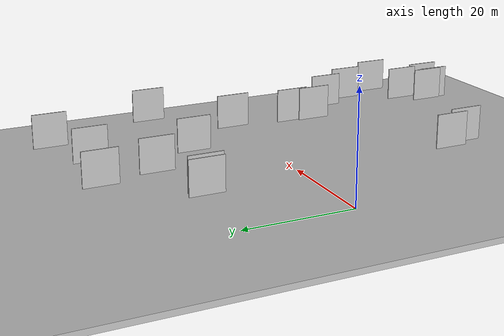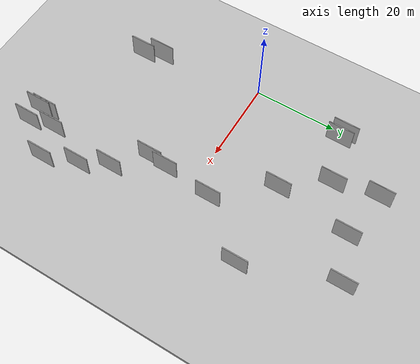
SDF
<?xml version="1.0" encoding="utf-8"?>

<sdf version="1.6">

   <world name="default">

      <gui fullscreen="0">

         <camera name="user_camera">

            <pose>-15 0 4.57585 0 0 0</pose>

            <view_controller>orbit</view_controller>

         </camera>

      </gui>

      <scene>

         <sky>

           <clouds>

             <speed>12</speed>

           </clouds>

         </sky>

         <ambient>0.4 0.4 0.4 1</ambient>

         <background>0.7 0.7 0.7 1</background>

         <shadows>1</shadows>

      </scene>

      <gravity>0 0 -9.8066</gravity>

      <magnetic_field>6e-06 2.3e-05 -4.2e-05</magnetic_field>

      <physics default="0" name="default_physics" type="ode">

         <ode>

            <solver>

               <type>quick</type>

               <iters>10</iters>

               <sor>1.0</sor>

               <use_dynamic_moi_rescaling>0</use_dynamic_moi_rescaling>

            </solver>

            <constraints>

               <cfm>0</cfm>

               <erp>0.2</erp>

               <contact_max_correcting_vel>100</contact_max_correcting_vel>

               <contact_surface_layer>0.001</contact_surface_layer>

            </constraints>

         </ode>

         <max_step_size>0.004</max_step_size>

         <real_time_factor>1</real_time_factor>

         <real_time_update_rate>250</real_time_update_rate>

      </physics>

      <light name="sun" type="directional">

         <cast_shadows>1</cast_shadows>

         <pose>0 0 10 0 0 0</pose>

         <diffuse>0.8 0.8 0.8 1</diffuse>

         <specular>0.2 0.2 0.2 1</specular>

         <attenuation>

            <range>1000</range>

            <constant>0.9</constant>

            <linear>0.01</linear>

            <quadratic>0.001</quadratic>

         </attenuation>

         <direction>-0.5 0.1 -0.9</direction>

      </light>

      <include>

         <name>ground_plane_1</name>

         <uri>model://HANNAS_ground_plane</uri>

         <pose>0 0 0  0 0 0</pose>

      </include>

      <include>

         <name>ground_plane_2</name>

         <uri>model://HANNAS_ground_plane</uri>

         <pose>100 0 0  0 0 0</pose>

      </include>

      <model name="HANNAS_wall_1">

         <static>1</static>

         <pose frame="">33.4672 6.1095 5.0 0.000000 0.000000 1.570796</pose>

         <link name="link">

            <pose frame="">0 0 3.00 0 0 0</pose>

            <collision name="collision">

               <geometry>

                  <box>

                     <size>6.00 0.2 6.00</size>

                  </box>

               </geometry>

               <max_contacts>10</max_contacts>

               <surface>

                  <contact>

                     <ode/>

                  </contact>

                  <bounce/>

                  <friction>

                     <torsional>

                        <ode/>

                     </torsional>

                     <ode/>

                  </friction>

               </surface>

            </collision>

            <visual name="visual">

               <cast_shadows>0</cast_shadows>

               <geometry>

                  <box>

                     <size>6.00 0.2 6.00</size>

                  </box>

               </geometry>

               <material>

                  <script>

                     <uri>model://HANNAS_wall/materials/scripts</uri>

                     <uri>model://HANNAS_wall/materials/textures</uri>

                     <name>vrc/HANNAS_wall</name>

                  </script>

               </material>

            </visual>

            <self_collide>0</self_collide>

            <enable_wind>0</enable_wind>

            <kinematic>0</kinematic>

         </link>

      </model>

      <model name="HANNAS_wall_2">

         <static>1</static>

         <pose frame="">8.4890 -26.8085 5.0 0.000000 0.000000 1.570796</pose>

         <link name="link">

            <pose frame="">0 0 3.00 0 0 0</pose>

            <collision name="collision">

               <geometry>

                  <box>

                     <size>6.00 0.2 6.00</size>

                  </box>

               </geometry>

               <max_contacts>10</max_contacts>

               <surface>

                  <contact>

                     <ode/>

                  </contact>

                  <bounce/>

                  <friction>

                     <torsional>

                        <ode/>

                     </torsional>

                     <ode/>

                  </friction>

               </surface>

            </collision>

            <visual name="visual">

               <cast_shadows>0</cast_shadows>

               <geometry>

                  <box>

                     <size>6.00 0.2 6.00</size>

                  </box>

               </geometry>

               <material>

                  <script>

                     <uri>model://HANNAS_wall/materials/scripts</uri>

                     <uri>model://HANNAS_wall/materials/textures</uri>

                     <name>vrc/HANNAS_wall</name>

                  </script>

               </material>

            </visual>

            <self_collide>0</self_collide>

            <enable_wind>0</enable_wind>

            <kinematic>0</kinematic>

         </link>

      </model>

      <model name="HANNAS_wall_3">

         <static>1</static>

         <pose frame="">34.0434 -37.7757 5.0 0.000000 0.000000 1.570796</pose>

         <link name="link">

            <pose frame="">0 0 3.00 0 0 0</pose>

            <collision name="collision">

               <geometry>

                  <box>

                     <size>6.00 0.2 6.00</size>

                  </box>

               </geometry>

               <max_contacts>10</max_contacts>

               <surface>

                  <contact>

                     <ode/>

                  </contact>

                  <bounce/>

                  <friction>

                     <torsional>

                        <ode/>

                     </torsional>

                     <ode/>

                  </friction>

               </surface>

            </collision>

            <visual name="visual">

               <cast_shadows>0</cast_shadows>

               <geometry>

                  <box>

                     <size>6.00 0.2 6.00</size>

                  </box>

               </geometry>

               <material>

                  <script>

                     <uri>model://HANNAS_wall/materials/scripts</uri>

                     <uri>model://HANNAS_wall/materials/textures</uri>

                     <name>vrc/HANNAS_wall</name>

                  </script>

               </material>

            </visual>

            <self_collide>0</self_collide>

            <enable_wind>0</enable_wind>

            <kinematic>0</kinematic>

         </link>

      </model>

      <model name="HANNAS_wall_4">

         <static>1</static>

         <pose frame="">14.4410 36.9254 5.0 0.000000 0.000000 1.570796</pose>

         <link name="link">

            <pose frame="">0 0 3.00 0 0 0</pose>

            <collision name="collision">

               <geometry>

                  <box>

                     <size>6.00 0.2 6.00</size>

                  </box>

               </geometry>

               <max_contacts>10</max_contacts>

               <surface>

                  <contact>

                     <ode/>

                  </contact>

                  <bounce/>

                  <friction>

                     <torsional>

                        <ode/>

                     </torsional>

                     <ode/>

                  </friction>

               </surface>

            </collision>

            <visual name="visual">

               <cast_shadows>0</cast_shadows>

               <geometry>

                  <box>

                     <size>6.00 0.2 6.00</size>

                  </box>

               </geometry>

               <material>

                  <script>

                     <uri>model://HANNAS_wall/materials/scripts</uri>

                     <uri>model://HANNAS_wall/materials/textures</uri>

                     <name>vrc/HANNAS_wall</name>

                  </script>

               </material>

            </visual>

            <self_collide>0</self_collide>

            <enable_wind>0</enable_wind>

            <kinematic>0</kinematic>

         </link>

      </model>

      <model name="HANNAS_wall_5">

         <static>1</static>

         <pose frame="">4.0566 23.6600 5.0 0.000000 0.000000 1.570796</pose>

         <link name="link">

            <pose frame="">0 0 3.00 0 0 0</pose>

            <collision name="collision">

               <geometry>

                  <box>

                     <size>6.00 0.2 6.00</size>

                  </box>

               </geometry>

               <max_contacts>10</max_contacts>

               <surface>

                  <contact>

                     <ode/>

                  </contact>

                  <bounce/>

                  <friction>

                     <torsional>

                        <ode/>

                     </torsional>

                     <ode/>

                  </friction>

               </surface>

            </collision>

            <visual name="visual">

               <cast_shadows>0</cast_shadows>

               <geometry>

                  <box>

                     <size>6.00 0.2 6.00</size>

                  </box>

               </geometry>

               <material>

                  <script>

                     <uri>model://HANNAS_wall/materials/scripts</uri>

                     <uri>model://HANNAS_wall/materials/textures</uri>

                     <name>vrc/HANNAS_wall</name>

                  </script>

               </material>

            </visual>

            <self_collide>0</self_collide>

            <enable_wind>0</enable_wind>

            <kinematic>0</kinematic>

         </link>

      </model>

      <model name="HANNAS_wall_6">

         <static>1</static>

         <pose frame="">36.7212 -32.2249 5.0 0.000000 0.000000 1.570796</pose>

         <link name="link">

            <pose frame="">0 0 3.00 0 0 0</pose>

            <collision name="collision">

               <geometry>

                  <box>

                     <size>6.00 0.2 6.00</size>

                  </box>

               </geometry>

               <max_contacts>10</max_contacts>

               <surface>

                  <contact>

                     <ode/>

                  </contact>

                  <bounce/>

                  <friction>

                     <torsional>

                        <ode/>

                     </torsional>

                     <ode/>

                  </friction>

               </surface>

            </collision>

            <visual name="visual">

               <cast_shadows>0</cast_shadows>

               <geometry>

                  <box>

                     <size>6.00 0.2 6.00</size>

                  </box>

               </geometry>

               <material>

                  <script>

                     <uri>model://HANNAS_wall/materials/scripts</uri>

                     <uri>model://HANNAS_wall/materials/textures</uri>

                     <name>vrc/HANNAS_wall</name>

                  </script>

               </material>

            </visual>

            <self_collide>0</self_collide>

            <enable_wind>0</enable_wind>

            <kinematic>0</kinematic>

         </link>

      </model>

      <model name="HANNAS_wall_7">

         <static>1</static>

         <pose frame="">33.7180 -36.2812 5.0 0.000000 0.000000 1.570796</pose>

         <link name="link">

            <pose frame="">0 0 3.00 0 0 0</pose>

            <collision name="collision">

               <geometry>

                  <box>

                     <size>6.00 0.2 6.00</size>

                  </box>

               </geometry>

               <max_contacts>10</max_contacts>

               <surface>

                  <contact>

                     <ode/>

                  </contact>

                  <bounce/>

                  <friction>

                     <torsional>

                        <ode/>

                     </torsional>

                     <ode/>

                  </friction>

               </surface>

            </collision>

            <visual name="visual">

               <cast_shadows>0</cast_shadows>

               <geometry>

                  <box>

                     <size>6.00 0.2 6.00</size>

                  </box>

               </geometry>

               <material>

                  <script>

                     <uri>model://HANNAS_wall/materials/scripts</uri>

                     <uri>model://HANNAS_wall/materials/textures</uri>

                     <name>vrc/HANNAS_wall</name>

                  </script>

               </material>

            </visual>

            <self_collide>0</self_collide>

            <enable_wind>0</enable_wind>

            <kinematic>0</kinematic>

         </link>

      </model>

      <model name="HANNAS_wall_8">

         <static>1</static>

         <pose frame="">5.6744 23.1368 5.0 0.000000 0.000000 1.570796</pose>

         <link name="link">

            <pose frame="">0 0 3.00 0 0 0</pose>

            <collision name="collision">

               <geometry>

                  <box>

                     <size>6.00 0.2 6.00</size>

                  </box>

               </geometry>

               <max_contacts>10</max_contacts>

               <surface>

                  <contact>

                     <ode/>

                  </contact>

                  <bounce/>

                  <friction>

                     <torsional>

                        <ode/>

                     </torsional>

                     <ode/>

                  </friction>

               </surface>

            </collision>

            <visual name="visual">

               <cast_shadows>0</cast_shadows>

               <geometry>

                  <box>

                     <size>6.00 0.2 6.00</size>

                  </box>

               </geometry>

               <material>

                  <script>

                     <uri>model://HANNAS_wall/materials/scripts</uri>

                     <uri>model://HANNAS_wall/materials/textures</uri>

                     <name>vrc/HANNAS_wall</name>

                  </script>

               </material>

            </visual>

            <self_collide>0</self_collide>

            <enable_wind>0</enable_wind>

            <kinematic>0</kinematic>

         </link>

      </model>

      <model name="HANNAS_wall_9">

         <static>1</static>

         <pose frame="">36.3481 38.9907 5.0 0.000000 0.000000 1.570796</pose>

         <link name="link">

            <pose frame="">0 0 3.00 0 0 0</pose>

            <collision name="collision">

               <geometry>

                  <box>

                     <size>6.00 0.2 6.00</size>

                  </box>

               </geometry>

               <max_contacts>10</max_contacts>

               <surface>

                  <contact>

                     <ode/>

                  </contact>

                  <bounce/>

                  <friction>

                     <torsional>

                        <ode/>

                     </torsional>

                     <ode/>

                  </friction>

               </surface>

            </collision>

            <visual name="visual">

               <cast_shadows>0</cast_shadows>

               <geometry>

                  <box>

                     <size>6.00 0.2 6.00</size>

                  </box>

               </geometry>

               <material>

                  <script>

                     <uri>model://HANNAS_wall/materials/scripts</uri>

                     <uri>model://HANNAS_wall/materials/textures</uri>

                     <name>vrc/HANNAS_wall</name>

                  </script>

               </material>

            </visual>

            <self_collide>0</self_collide>

            <enable_wind>0</enable_wind>

            <kinematic>0</kinematic>

         </link>

      </model>

      <model name="HANNAS_wall_10">

         <static>1</static>

         <pose frame="">43.6414 18.6308 5.0 0.000000 0.000000 1.570796</pose>

         <link name="link">

            <pose frame="">0 0 3.00 0 0 0</pose>

            <collision name="collision">

               <geometry>

                  <box>

                     <size>6.00 0.2 6.00</size>

                  </box>

               </geometry>

               <max_contacts>10</max_contacts>

               <surface>

                  <contact>

                     <ode/>

                  </contact>

                  <bounce/>

                  <friction>

                     <torsional>

                        <ode/>

                     </torsional>

                     <ode/>

                  </friction>

               </surface>

            </collision>

            <visual name="visual">

               <cast_shadows>0</cast_shadows>

               <geometry>

                  <box>

                     <size>6.00 0.2 6.00</size>

                  </box>

               </geometry>

               <material>

                  <script>

                     <uri>model://HANNAS_wall/materials/scripts</uri>

                     <uri>model://HANNAS_wall/materials/textures</uri>

                     <name>vrc/HANNAS_wall</name>

                  </script>

               </material>

            </visual>

            <self_collide>0</self_collide>

            <enable_wind>0</enable_wind>

            <kinematic>0</kinematic>

         </link>

      </model>

      <model name="HANNAS_wall_11">

         <static>1</static>

         <pose frame="">44.1899 -29.6172 5.0 0.000000 0.000000 1.570796</pose>

         <link name="link">

            <pose frame="">0 0 3.00 0 0 0</pose>

            <collision name="collision">

               <geometry>

                  <box>

                     <size>6.00 0.2 6.00</size>

                  </box>

               </geometry>

               <max_contacts>10</max_contacts>

               <surface>

                  <contact>

                     <ode/>

                  </contact>

                  <bounce/>

                  <friction>

                     <torsional>

                        <ode/>

                     </torsional>

                     <ode/>

                  </friction>

               </surface>

            </collision>

            <visual name="visual">

               <cast_shadows>0</cast_shadows>

               <geometry>

                  <box>

                     <size>6.00 0.2 6.00</size>

                  </box>

               </geometry>

               <material>

                  <script>

                     <uri>model://HANNAS_wall/materials/scripts</uri>

                     <uri>model://HANNAS_wall/materials/textures</uri>

                     <name>vrc/HANNAS_wall</name>

                  </script>

               </material>

            </visual>

            <self_collide>0</self_collide>

            <enable_wind>0</enable_wind>

            <kinematic>0</kinematic>

         </link>

      </model>

      <model name="HANNAS_wall_12">

         <static>1</static>

         <pose frame="">31.7360 -9.5927 5.0 0.000000 0.000000 1.570796</pose>

         <link name="link">

            <pose frame="">0 0 3.00 0 0 0</pose>

            <collision name="collision">

               <geometry>

                  <box>

                     <size>6.00 0.2 6.00</size>

                  </box>

               </geometry>

               <max_contacts>10</max_contacts>

               <surface>

                  <contact>

                     <ode/>

                  </contact>

                  <bounce/>

                  <friction>

                     <torsional>

                        <ode/>

                     </torsional>

                     <ode/>

                  </friction>

               </surface>

            </collision>

            <visual name="visual">

               <cast_shadows>0</cast_shadows>

               <geometry>

                  <box>

                     <size>6.00 0.2 6.00</size>

                  </box>

               </geometry>

               <material>

                  <script>

                     <uri>model://HANNAS_wall/materials/scripts</uri>

                     <uri>model://HANNAS_wall/materials/textures</uri>

                     <name>vrc/HANNAS_wall</name>

                  </script>

               </material>

            </visual>

            <self_collide>0</self_collide>

            <enable_wind>0</enable_wind>

            <kinematic>0</kinematic>

         </link>

      </model>

      <model name="HANNAS_wall_13">

         <static>1</static>

         <pose frame="">26.1785 34.9838 5.0 0.000000 0.000000 1.570796</pose>

         <link name="link">

            <pose frame="">0 0 3.00 0 0 0</pose>

            <collision name="collision">

               <geometry>

                  <box>

                     <size>6.00 0.2 6.00</size>

                  </box>

               </geometry>

               <max_contacts>10</max_contacts>

               <surface>

                  <contact>

                     <ode/>

                  </contact>

                  <bounce/>

                  <friction>

                     <torsional>

                        <ode/>

                     </torsional>

                     <ode/>

                  </friction>

               </surface>

            </collision>

            <visual name="visual">

               <cast_shadows>0</cast_shadows>

               <geometry>

                  <box>

                     <size>6.00 0.2 6.00</size>

                  </box>

               </geometry>

               <material>

                  <script>

                     <uri>model://HANNAS_wall/materials/scripts</uri>

                     <uri>model://HANNAS_wall/materials/textures</uri>

                     <name>vrc/HANNAS_wall</name>

                  </script>

               </material>

            </visual>

            <self_collide>0</self_collide>

            <enable_wind>0</enable_wind>

            <kinematic>0</kinematic>

         </link>

      </model>

      <model name="HANNAS_wall_14">

         <static>1</static>

         <pose frame="">41.4398 -22.0215 5.0 0.000000 0.000000 1.570796</pose>

         <link name="link">

            <pose frame="">0 0 3.00 0 0 0</pose>

            <collision name="collision">

               <geometry>

                  <box>

                     <size>6.00 0.2 6.00</size>

                  </box>

               </geometry>

               <max_contacts>10</max_contacts>

               <surface>

                  <contact>

                     <ode/>

                  </contact>

                  <bounce/>

                  <friction>

                     <torsional>

                        <ode/>

                     </torsional>

                     <ode/>

                  </friction>

               </surface>

            </collision>

            <visual name="visual">

               <cast_shadows>0</cast_shadows>

               <geometry>

                  <box>

                     <size>6.00 0.2 6.00</size>

                  </box>

               </geometry>

               <material>

                  <script>

                     <uri>model://HANNAS_wall/materials/scripts</uri>

                     <uri>model://HANNAS_wall/materials/textures</uri>

                     <name>vrc/HANNAS_wall</name>

                  </script>

               </material>

            </visual>

            <self_collide>0</self_collide>

            <enable_wind>0</enable_wind>

            <kinematic>0</kinematic>

         </link>

      </model>

      <model name="HANNAS_wall_15">

         <static>1</static>

         <pose frame="">6.7682 -22.7640 5.0 0.000000 0.000000 1.570796</pose>

         <link name="link">

            <pose frame="">0 0 3.00 0 0 0</pose>

            <collision name="collision">

               <geometry>

                  <box>

                     <size>6.00 0.2 6.00</size>

                  </box>

               </geometry>

               <max_contacts>10</max_contacts>

               <surface>

                  <contact>

                     <ode/>

                  </contact>

                  <bounce/>

                  <friction>

                     <torsional>

                        <ode/>

                     </torsional>

                     <ode/>

                  </friction>

               </surface>

            </collision>

            <visual name="visual">

               <cast_shadows>0</cast_shadows>

               <geometry>

                  <box>

                     <size>6.00 0.2 6.00</size>

                  </box>

               </geometry>

               <material>

                  <script>

                     <uri>model://HANNAS_wall/materials/scripts</uri>

                     <uri>model://HANNAS_wall/materials/textures</uri>

                     <name>vrc/HANNAS_wall</name>

                  </script>

               </material>

            </visual>

            <self_collide>0</self_collide>

            <enable_wind>0</enable_wind>

            <kinematic>0</kinematic>

         </link>

      </model>

      <model name="HANNAS_wall_16">

         <static>1</static>

         <pose frame="">32.2756 -5.3824 5.0 0.000000 0.000000 1.570796</pose>

         <link name="link">

            <pose frame="">0 0 3.00 0 0 0</pose>

            <collision name="collision">

               <geometry>

                  <box>

                     <size>6.00 0.2 6.00</size>

                  </box>

               </geometry>

               <max_contacts>10</max_contacts>

               <surface>

                  <contact>

                     <ode/>

                  </contact>

                  <bounce/>

                  <friction>

                     <torsional>

                        <ode/>

                     </torsional>

                     <ode/>

                  </friction>

               </surface>

            </collision>

            <visual name="visual">

               <cast_shadows>0</cast_shadows>

               <geometry>

                  <box>

                     <size>6.00 0.2 6.00</size>

                  </box>

               </geometry>

               <material>

                  <script>

                     <uri>model://HANNAS_wall/materials/scripts</uri>

                     <uri>model://HANNAS_wall/materials/textures</uri>

                     <name>vrc/HANNAS_wall</name>

                  </script>

               </material>

            </visual>

            <self_collide>0</self_collide>

            <enable_wind>0</enable_wind>

            <kinematic>0</kinematic>

         </link>

      </model>

      <model name="HANNAS_wall_17">

         <static>1</static>

         <pose frame="">23.8671 17.6292 5.0 0.000000 0.000000 1.570796</pose>

         <link name="link">

            <pose frame="">0 0 3.00 0 0 0</pose>

            <collision name="collision">

               <geometry>

                  <box>

                     <size>6.00 0.2 6.00</size>

                  </box>

               </geometry>

               <max_contacts>10</max_contacts>

               <surface>

                  <contact>

                     <ode/>

                  </contact>

                  <bounce/>

                  <friction>

                     <torsional>

                        <ode/>

                     </torsional>

                     <ode/>

                  </friction>

               </surface>

            </collision>

            <visual name="visual">

               <cast_shadows>0</cast_shadows>

               <geometry>

                  <box>

                     <size>6.00 0.2 6.00</size>

                  </box>

               </geometry>

               <material>

                  <script>

                     <uri>model://HANNAS_wall/materials/scripts</uri>

                     <uri>model://HANNAS_wall/materials/textures</uri>

                     <name>vrc/HANNAS_wall</name>

                  </script>

               </material>

            </visual>

            <self_collide>0</self_collide>

            <enable_wind>0</enable_wind>

            <kinematic>0</kinematic>

         </link>

      </model>

      <model name="HANNAS_wall_18">

         <static>1</static>

         <pose frame="">16.6454 26.9164 5.0 0.000000 0.000000 1.570796</pose>

         <link name="link">

            <pose frame="">0 0 3.00 0 0 0</pose>

            <collision name="collision">

               <geometry>

                  <box>

                     <size>6.00 0.2 6.00</size>

                  </box>

               </geometry>

               <max_contacts>10</max_contacts>

               <surface>

                  <contact>

                     <ode/>

                  </contact>

                  <bounce/>

                  <friction>

                     <torsional>

                        <ode/>

                     </torsional>

                     <ode/>

                  </friction>

               </surface>

            </collision>

            <visual name="visual">

               <cast_shadows>0</cast_shadows>

               <geometry>

                  <box>

                     <size>6.00 0.2 6.00</size>

                  </box>

               </geometry>

               <material>

                  <script>

                     <uri>model://HANNAS_wall/materials/scripts</uri>

                     <uri>model://HANNAS_wall/materials/textures</uri>

                     <name>vrc/HANNAS_wall</name>

                  </script>

               </material>

            </visual>

            <self_collide>0</self_collide>

            <enable_wind>0</enable_wind>

            <kinematic>0</kinematic>

         </link>

      </model>

      <model name="HANNAS_wall_19">

         <static>1</static>

         <pose frame="">38.2388 -15.7508 5.0 0.000000 0.000000 1.570796</pose>

         <link name="link">

            <pose frame="">0 0 3.00 0 0 0</pose>

            <collision name="collision">

               <geometry>

                  <box>

                     <size>6.00 0.2 6.00</size>

                  </box>

               </geometry>

               <max_contacts>10</max_contacts>

               <surface>

                  <contact>

                     <ode/>

                  </contact>

                  <bounce/>

                  <friction>

                     <torsional>

                        <ode/>

                     </torsional>

                     <ode/>

                  </friction>

               </surface>

            </collision>

            <visual name="visual">

               <cast_shadows>0</cast_shadows>

               <geometry>

                  <box>

                     <size>6.00 0.2 6.00</size>

                  </box>

               </geometry>

               <material>

                  <script>

                     <uri>model://HANNAS_wall/materials/scripts</uri>

                     <uri>model://HANNAS_wall/materials/textures</uri>

                     <name>vrc/HANNAS_wall</name>

                  </script>

               </material>

            </visual>

            <self_collide>0</self_collide>

            <enable_wind>0</enable_wind>

            <kinematic>0</kinematic>

         </link>

      </model>

      <model name="HANNAS_wall_20">

         <static>1</static>

         <pose frame="">38.0040 -37.9056 5.0 0.000000 0.000000 1.570796</pose>

         <link name="link">

            <pose frame="">0 0 3.00 0 0 0</pose>

            <collision name="collision">

               <geometry>

                  <box>

                     <size>6.00 0.2 6.00</size>

                  </box>

               </geometry>

               <max_contacts>10</max_contacts>

               <surface>

                  <contact>

                     <ode/>

                  </contact>

                  <bounce/>

                  <friction>

                     <torsional>

                        <ode/>

                     </torsional>

                     <ode/>

                  </friction>

               </surface>

            </collision>

            <visual name="visual">

               <cast_shadows>0</cast_shadows>

               <geometry>

                  <box>

                     <size>6.00 0.2 6.00</size>

                  </box>

               </geometry>

               <material>

                  <script>

                     <uri>model://HANNAS_wall/materials/scripts</uri>

                     <uri>model://HANNAS_wall/materials/textures</uri>

                     <name>vrc/HANNAS_wall</name>

                  </script>

               </material>

            </visual>

            <self_collide>0</self_collide>

            <enable_wind>0</enable_wind>

            <kinematic>0</kinematic>

         </link>

      </model>

   </world>

</sdf>

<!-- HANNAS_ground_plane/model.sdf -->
<sdf version="1.4">
<model name="HANNAS_ground_plane">
  <static>true</static>
    <link name="link">
      <collision name="collision">
        <geometry>
          <plane>
            <normal>0 0 1</normal>
            <size>1000 1000</size>
          </plane>
        </geometry>
        <surface>
          <friction>
            <ode>
              <mu>100</mu>
              <mu2>50</mu2>
            </ode>
          </friction>
        </surface>
      </collision>
      <visual name="visual">
        <cast_shadows>false</cast_shadows>
        <geometry>
          <plane>
            <normal>0 0 1</normal>
            <size>1000 1000</size>
          </plane>
        </geometry>
        <material>
          <script>
            <uri>model://HANNAS_ground_plane/materials/scripts/HANNAS_ground_plane.material</uri>
	    <uri>model://HANNAS_ground_plane/materials/textures</uri>
            <name>HANNASGroundPlane/Image</name>
          </script>
        </material>
      </visual>
    </link>
  </model>
</sdf>
